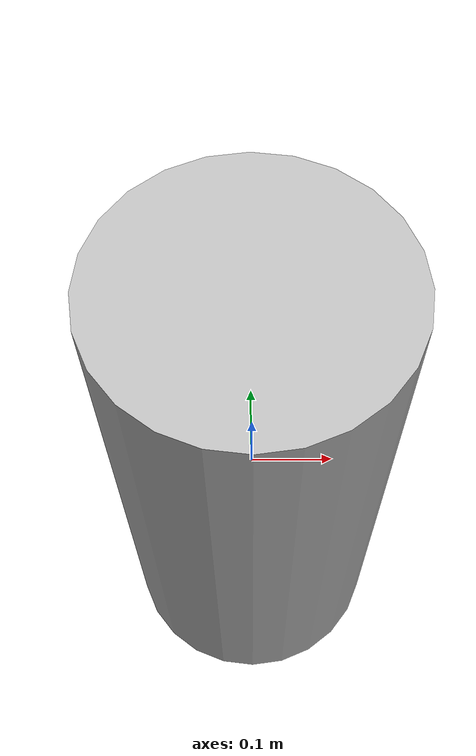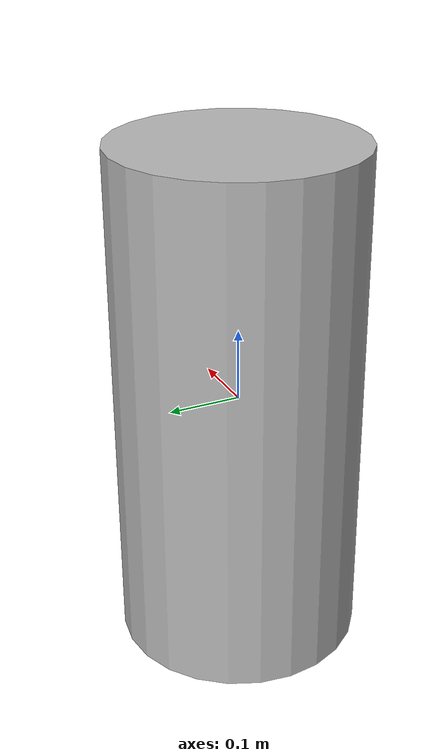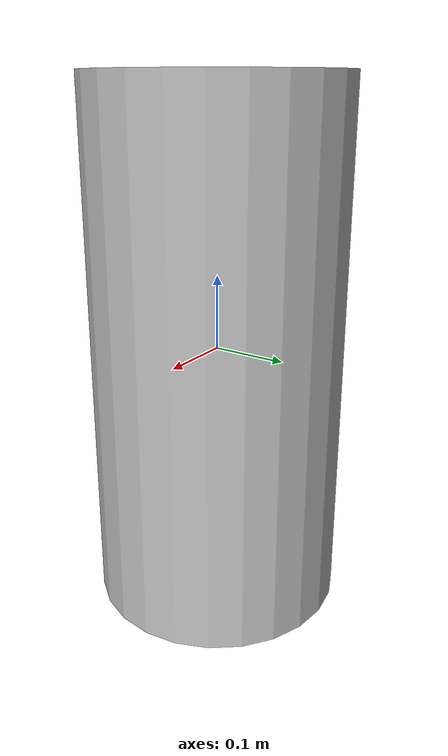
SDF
<?xml version="1.0"?>
<sdf version="1.6">
  <model name="reo2016/kitchen_trashbin">
    <link name="1_link">
      <collision name="1_col">
        <geometry>
          <cylinder>
            <length>0.71</length>
            <radius>0.17</radius>
          </cylinder>
        </geometry>
      </collision>
      <visual name="1_vis">
        <geometry>
          <cylinder>
            <length>0.71</length>
            <radius>0.17</radius>
          </cylinder>
        </geometry>
      </visual>
      <pose>0 0 0 0 0 0</pose>
    </link>
    <static>true</static>
  </model>
</sdf>
